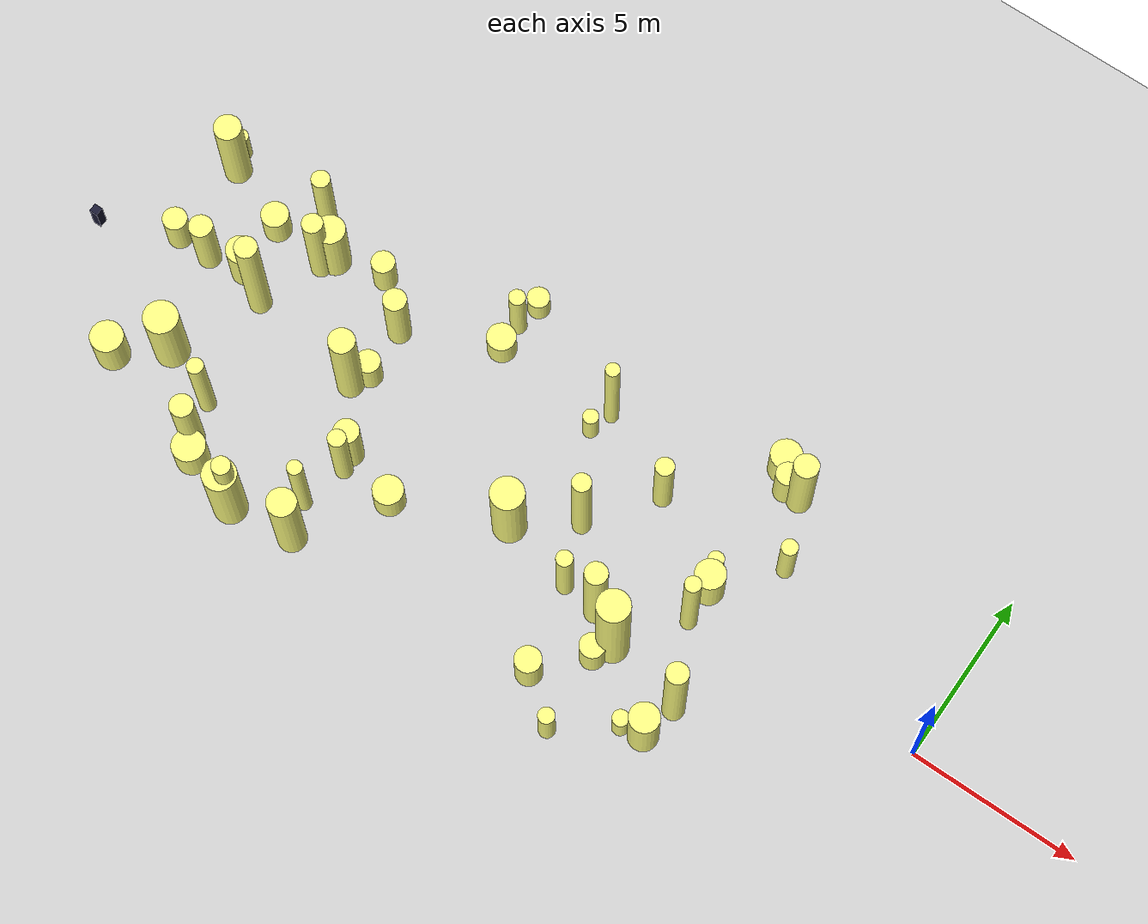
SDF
<sdf version="1.4">
 <world name="default">
  <include><uri>model://ground_plane</uri></include>
  <include><uri>model://sun</uri></include>
  <model name="forest">
   <static>true</static>
   <link name="cylinder0">
    <pose>-23.785170255682715 0.858615654751226 1.0680569842711363 0 0 0</pose>
    <visual name="visual">
     <geometry>
      <cylinder><radius>0.3402988717110522</radius><length>2.1361139685422725</length></cylinder>
     </geometry>
     <material>
      <ambient>0.6 0.6 0.6 1</ambient>
      <diffuse>1 1 0.5 1</diffuse>
      <specular>0 0 0</specular>
      <emissive>0 0 0 1</emissive>
     </material>
    </visual>
    <collision name="collision">
     <geometry>
      <cylinder><radius>0.3402988717110522</radius><length>2.1361139685422725</length></cylinder>
     </geometry>
     <max_contacts>0</max_contacts>
    </collision>
   </link>
   <link name="cylinder2">
    <pose>-16.982513130498866 -4.464230554886309 1.5181779043415704 0 0 0</pose>
    <visual name="visual">
     <geometry>
      <cylinder><radius>0.41453890767657153</radius><length>3.036355808683141</length></cylinder>
     </geometry>
     <material>
      <ambient>0.6 0.6 0.6 1</ambient>
      <diffuse>1 1 0.5 1</diffuse>
      <specular>0 0 0</specular>
      <emissive>0 0 0 1</emissive>
     </material>
    </visual>
    <collision name="collision">
     <geometry>
      <cylinder><radius>0.41453890767657153</radius><length>3.036355808683141</length></cylinder>
     </geometry>
     <max_contacts>0</max_contacts>
    </collision>
   </link>
   <link name="cylinder4">
    <pose>-17.305909216532676 -3.473697885444673 1.4575486880233148 0 0 0</pose>
    <visual name="visual">
     <geometry>
      <cylinder><radius>0.21732607669334028</radius><length>2.9150973760466297</length></cylinder>
     </geometry>
     <material>
      <ambient>0.6 0.6 0.6 1</ambient>
      <diffuse>1 1 0.5 1</diffuse>
      <specular>0 0 0</specular>
      <emissive>0 0 0 1</emissive>
     </material>
    </visual>
    <collision name="collision">
     <geometry>
      <cylinder><radius>0.21732607669334028</radius><length>2.9150973760466297</length></cylinder>
     </geometry>
     <max_contacts>0</max_contacts>
    </collision>
   </link>
   <link name="cylinder7">
    <pose>-21.497163602215124 3.442455883583156 1.6812864613903267 0 0 0</pose>
    <visual name="visual">
     <geometry>
      <cylinder><radius>0.2655494989353468</radius><length>3.3625729227806533</length></cylinder>
     </geometry>
     <material>
      <ambient>0.6 0.6 0.6 1</ambient>
      <diffuse>1 1 0.5 1</diffuse>
      <specular>0 0 0</specular>
      <emissive>0 0 0 1</emissive>
     </material>
    </visual>
    <collision name="collision">
     <geometry>
      <cylinder><radius>0.2655494989353468</radius><length>3.3625729227806533</length></cylinder>
     </geometry>
     <max_contacts>0</max_contacts>
    </collision>
   </link>
   <link name="cylinder14">
    <pose>-15.424550456200043 -2.119455929859245 0.4834123405492821 0 0 0</pose>
    <visual name="visual">
     <geometry>
      <cylinder><radius>0.43687664144653027</radius><length>0.9668246810985642</length></cylinder>
     </geometry>
     <material>
      <ambient>0.6 0.6 0.6 1</ambient>
      <diffuse>1 1 0.5 1</diffuse>
      <specular>0 0 0</specular>
      <emissive>0 0 0 1</emissive>
     </material>
    </visual>
    <collision name="collision">
     <geometry>
      <cylinder><radius>0.43687664144653027</radius><length>0.9668246810985642</length></cylinder>
     </geometry>
     <max_contacts>0</max_contacts>
    </collision>
   </link>
   <link name="cylinder15">
    <pose>-24.830451484869965 0.8806531129328423 0.6390781866645068 0 0 0</pose>
    <visual name="visual">
     <geometry>
      <cylinder><radius>0.35179560158539624</radius><length>1.2781563733290136</length></cylinder>
     </geometry>
     <material>
      <ambient>0.6 0.6 0.6 1</ambient>
      <diffuse>1 1 0.5 1</diffuse>
      <specular>0 0 0</specular>
      <emissive>0 0 0 1</emissive>
     </material>
    </visual>
    <collision name="collision">
     <geometry>
      <cylinder><radius>0.35179560158539624</radius><length>1.2781563733290136</length></cylinder>
     </geometry>
     <max_contacts>0</max_contacts>
    </collision>
   </link>
   <link name="cylinder16">
    <pose>-17.09226629540975 -1.618599905884798 0.9177513465718122 0 0 0</pose>
    <visual name="visual">
     <geometry>
      <cylinder><radius>0.36407450608267056</radius><length>1.8355026931436245</length></cylinder>
     </geometry>
     <material>
      <ambient>0.6 0.6 0.6 1</ambient>
      <diffuse>1 1 0.5 1</diffuse>
      <specular>0 0 0</specular>
      <emissive>0 0 0 1</emissive>
     </material>
    </visual>
    <collision name="collision">
     <geometry>
      <cylinder><radius>0.36407450608267056</radius><length>1.8355026931436245</length></cylinder>
     </geometry>
     <max_contacts>0</max_contacts>
    </collision>
   </link>
   <link name="cylinder20">
    <pose>-7.146554907595238 1.3591154046007201 0.32350330603252303 0 0 0</pose>
    <visual name="visual">
     <geometry>
      <cylinder><radius>0.2321273657846676</radius><length>0.6470066120650461</length></cylinder>
     </geometry>
     <material>
      <ambient>0.6 0.6 0.6 1</ambient>
      <diffuse>1 1 0.5 1</diffuse>
      <specular>0 0 0</specular>
      <emissive>0 0 0 1</emissive>
     </material>
    </visual>
    <collision name="collision">
     <geometry>
      <cylinder><radius>0.2321273657846676</radius><length>0.6470066120650461</length></cylinder>
     </geometry>
     <max_contacts>0</max_contacts>
    </collision>
   </link>
   <link name="cylinder22">
    <pose>-6.776622383678561 4.212827206988498 0.7084860347944146 0 0 0</pose>
    <visual name="visual">
     <geometry>
      <cylinder><radius>0.3408848058256867</radius><length>1.4169720695888293</length></cylinder>
     </geometry>
     <material>
      <ambient>0.6 0.6 0.6 1</ambient>
      <diffuse>1 1 0.5 1</diffuse>
      <specular>0 0 0</specular>
      <emissive>0 0 0 1</emissive>
     </material>
    </visual>
    <collision name="collision">
     <geometry>
      <cylinder><radius>0.3408848058256867</radius><length>1.4169720695888293</length></cylinder>
     </geometry>
     <max_contacts>0</max_contacts>
    </collision>
   </link>
   <link name="cylinder25">
    <pose>-12.109198337162896 2.655638317493475 0.5547450570341494 0 0 0</pose>
    <visual name="visual">
     <geometry>
      <cylinder><radius>0.2238756173687885</radius><length>1.109490114068299</length></cylinder>
     </geometry>
     <material>
      <ambient>0.6 0.6 0.6 1</ambient>
      <diffuse>1 1 0.5 1</diffuse>
      <specular>0 0 0</specular>
      <emissive>0 0 0 1</emissive>
     </material>
    </visual>
    <collision name="collision">
     <geometry>
      <cylinder><radius>0.2238756173687885</radius><length>1.109490114068299</length></cylinder>
     </geometry>
     <max_contacts>0</max_contacts>
    </collision>
   </link>
   <link name="cylinder27">
    <pose>-15.336848639112066 4.816204754179994 0.39421610292568143 0 0 0</pose>
    <visual name="visual">
     <geometry>
      <cylinder><radius>0.3200530086702805</radius><length>0.7884322058513629</length></cylinder>
     </geometry>
     <material>
      <ambient>0.6 0.6 0.6 1</ambient>
      <diffuse>1 1 0.5 1</diffuse>
      <specular>0 0 0</specular>
      <emissive>0 0 0 1</emissive>
     </material>
    </visual>
    <collision name="collision">
     <geometry>
      <cylinder><radius>0.3200530086702805</radius><length>0.7884322058513629</length></cylinder>
     </geometry>
     <max_contacts>0</max_contacts>
    </collision>
   </link>
   <link name="cylinder29">
    <pose>-24.719279816919176 3.440128337403527 1.3865433847531825 0 0 0</pose>
    <visual name="visual">
     <geometry>
      <cylinder><radius>0.3936484266282352</radius><length>2.773086769506365</length></cylinder>
     </geometry>
     <material>
      <ambient>0.6 0.6 0.6 1</ambient>
      <diffuse>1 1 0.5 1</diffuse>
      <specular>0 0 0</specular>
      <emissive>0 0 0 1</emissive>
     </material>
    </visual>
    <collision name="collision">
     <geometry>
      <cylinder><radius>0.3936484266282352</radius><length>2.773086769506365</length></cylinder>
     </geometry>
     <max_contacts>0</max_contacts>
    </collision>
   </link>
   <link name="cylinder32">
    <pose>-12.344993057159408 -0.8581550215634417 1.3897939412623308 0 0 0</pose>
    <visual name="visual">
     <geometry>
      <cylinder><radius>0.47974164405565967</radius><length>2.7795878825246616</length></cylinder>
     </geometry>
     <material>
      <ambient>0.6 0.6 0.6 1</ambient>
      <diffuse>1 1 0.5 1</diffuse>
      <specular>0 0 0</specular>
      <emissive>0 0 0 1</emissive>
     </material>
    </visual>
    <collision name="collision">
     <geometry>
      <cylinder><radius>0.47974164405565967</radius><length>2.7795878825246616</length></cylinder>
     </geometry>
     <max_contacts>0</max_contacts>
    </collision>
   </link>
   <link name="cylinder38">
    <pose>-10.767923466901912 0.28126110510569546 1.75378816546496 0 0 0</pose>
    <visual name="visual">
     <geometry>
      <cylinder><radius>0.26946038249747256</radius><length>3.50757633092992</length></cylinder>
     </geometry>
     <material>
      <ambient>0.6 0.6 0.6 1</ambient>
      <diffuse>1 1 0.5 1</diffuse>
      <specular>0 0 0</specular>
      <emissive>0 0 0 1</emissive>
     </material>
    </visual>
    <collision name="collision">
     <geometry>
      <cylinder><radius>0.26946038249747256</radius><length>3.50757633092992</length></cylinder>
     </geometry>
     <max_contacts>0</max_contacts>
    </collision>
   </link>
   <link name="cylinder39">
    <pose>-5.542187458005763 2.330024956682271 1.0112195197869174 0 0 0</pose>
    <visual name="visual">
     <geometry>
      <cylinder><radius>0.2346234141529287</radius><length>2.0224390395738348</length></cylinder>
     </geometry>
     <material>
      <ambient>0.6 0.6 0.6 1</ambient>
      <diffuse>1 1 0.5 1</diffuse>
      <specular>0 0 0</specular>
      <emissive>0 0 0 1</emissive>
     </material>
    </visual>
    <collision name="collision">
     <geometry>
      <cylinder><radius>0.2346234141529287</radius><length>2.0224390395738348</length></cylinder>
     </geometry>
     <max_contacts>0</max_contacts>
    </collision>
   </link>
   <link name="cylinder40">
    <pose>-21.79514124067716 0.5589695124922365 1.9137921319072406 0 0 0</pose>
    <visual name="visual">
     <geometry>
      <cylinder><radius>0.325509300702765</radius><length>3.8275842638144812</length></cylinder>
     </geometry>
     <material>
      <ambient>0.6 0.6 0.6 1</ambient>
      <diffuse>1 1 0.5 1</diffuse>
      <specular>0 0 0</specular>
      <emissive>0 0 0 1</emissive>
     </material>
    </visual>
    <collision name="collision">
     <geometry>
      <cylinder><radius>0.325509300702765</radius><length>3.8275842638144812</length></cylinder>
     </geometry>
     <max_contacts>0</max_contacts>
    </collision>
   </link>
   <link name="cylinder41">
    <pose>-6.868907569636146 -0.3416063995372749 1.7190181544570673 0 0 0</pose>
    <visual name="visual">
     <geometry>
      <cylinder><radius>0.23068241252803065</radius><length>3.4380363089141346</length></cylinder>
     </geometry>
     <material>
      <ambient>0.6 0.6 0.6 1</ambient>
      <diffuse>1 1 0.5 1</diffuse>
      <specular>0 0 0</specular>
      <emissive>0 0 0 1</emissive>
     </material>
    </visual>
    <collision name="collision">
     <geometry>
      <cylinder><radius>0.23068241252803065</radius><length>3.4380363089141346</length></cylinder>
     </geometry>
     <max_contacts>0</max_contacts>
    </collision>
   </link>
   <link name="cylinder42">
    <pose>-22.688539557558652 1.092514639524965 0.7696702428925606 0 0 0</pose>
    <visual name="visual">
     <geometry>
      <cylinder><radius>0.4211997071474807</radius><length>1.5393404857851212</length></cylinder>
     </geometry>
     <material>
      <ambient>0.6 0.6 0.6 1</ambient>
      <diffuse>1 1 0.5 1</diffuse>
      <specular>0 0 0</specular>
      <emissive>0 0 0 1</emissive>
     </material>
    </visual>
    <collision name="collision">
     <geometry>
      <cylinder><radius>0.4211997071474807</radius><length>1.5393404857851212</length></cylinder>
     </geometry>
     <max_contacts>0</max_contacts>
    </collision>
   </link>
   <link name="cylinder44">
    <pose>-6.732094830644947 -3.7667867439288116 0.4926059050593634 0 0 0</pose>
    <visual name="visual">
     <geometry>
      <cylinder><radius>0.23911900259635044</radius><length>0.9852118101187268</length></cylinder>
     </geometry>
     <material>
      <ambient>0.6 0.6 0.6 1</ambient>
      <diffuse>1 1 0.5 1</diffuse>
      <specular>0 0 0</specular>
      <emissive>0 0 0 1</emissive>
     </material>
    </visual>
    <collision name="collision">
     <geometry>
      <cylinder><radius>0.23911900259635044</radius><length>0.9852118101187268</length></cylinder>
     </geometry>
     <max_contacts>0</max_contacts>
    </collision>
   </link>
   <link name="cylinder45">
    <pose>-18.29430755576153 0.005436097848785515 1.6315916997252689 0 0 0</pose>
    <visual name="visual">
     <geometry>
      <cylinder><radius>0.37604112075896046</radius><length>3.2631833994505377</length></cylinder>
     </geometry>
     <material>
      <ambient>0.6 0.6 0.6 1</ambient>
      <diffuse>1 1 0.5 1</diffuse>
      <specular>0 0 0</specular>
      <emissive>0 0 0 1</emissive>
     </material>
    </visual>
    <collision name="collision">
     <geometry>
      <cylinder><radius>0.37604112075896046</radius><length>3.2631833994505377</length></cylinder>
     </geometry>
     <max_contacts>0</max_contacts>
    </collision>
   </link>
   <link name="cylinder47">
    <pose>-22.724056565020206 2.6316526298070873 0.5052599635196058 0 0 0</pose>
    <visual name="visual">
     <geometry>
      <cylinder><radius>0.3982028571683419</radius><length>1.0105199270392116</length></cylinder>
     </geometry>
     <material>
      <ambient>0.6 0.6 0.6 1</ambient>
      <diffuse>1 1 0.5 1</diffuse>
      <specular>0 0 0</specular>
      <emissive>0 0 0 1</emissive>
     </material>
    </visual>
    <collision name="collision">
     <geometry>
      <cylinder><radius>0.3982028571683419</radius><length>1.0105199270392116</length></cylinder>
     </geometry>
     <max_contacts>0</max_contacts>
    </collision>
   </link>
   <link name="cylinder52">
    <pose>-21.193401463640356 -2.6621613360079985 1.427286006217452 0 0 0</pose>
    <visual name="visual">
     <geometry>
      <cylinder><radius>0.23805275025386985</radius><length>2.854572012434904</length></cylinder>
     </geometry>
     <material>
      <ambient>0.6 0.6 0.6 1</ambient>
      <diffuse>1 1 0.5 1</diffuse>
      <specular>0 0 0</specular>
      <emissive>0 0 0 1</emissive>
     </material>
    </visual>
    <collision name="collision">
     <geometry>
      <cylinder><radius>0.23805275025386985</radius><length>2.854572012434904</length></cylinder>
     </geometry>
     <max_contacts>0</max_contacts>
    </collision>
   </link>
   <link name="cylinder62">
    <pose>-24.206459652244096 -2.980930419648762 0.6776186498868113 0 0 0</pose>
    <visual name="visual">
     <geometry>
      <cylinder><radius>0.47298898345222123</radius><length>1.3552372997736226</length></cylinder>
     </geometry>
     <material>
      <ambient>0.6 0.6 0.6 1</ambient>
      <diffuse>1 1 0.5 1</diffuse>
      <specular>0 0 0</specular>
      <emissive>0 0 0 1</emissive>
     </material>
    </visual>
    <collision name="collision">
     <geometry>
      <cylinder><radius>0.47298898345222123</radius><length>1.3552372997736226</length></cylinder>
     </geometry>
     <max_contacts>0</max_contacts>
    </collision>
   </link>
   <link name="cylinder63">
    <pose>-22.931414568197084 -1.976654648532099 1.2367834670499915 0 0 0</pose>
    <visual name="visual">
     <geometry>
      <cylinder><radius>0.4950678559038876</radius><length>2.473566934099983</length></cylinder>
     </geometry>
     <material>
      <ambient>0.6 0.6 0.6 1</ambient>
      <diffuse>1 1 0.5 1</diffuse>
      <specular>0 0 0</specular>
      <emissive>0 0 0 1</emissive>
     </material>
    </visual>
    <collision name="collision">
     <geometry>
      <cylinder><radius>0.4950678559038876</radius><length>2.473566934099983</length></cylinder>
     </geometry>
     <max_contacts>0</max_contacts>
    </collision>
   </link>
   <link name="cylinder64">
    <pose>-8.284358423220816 -4.931271896442986 0.7731584431832025 0 0 0</pose>
    <visual name="visual">
     <geometry>
      <cylinder><radius>0.23332429806397634</radius><length>1.546316886366405</length></cylinder>
     </geometry>
     <material>
      <ambient>0.6 0.6 0.6 1</ambient>
      <diffuse>1 1 0.5 1</diffuse>
      <specular>0 0 0</specular>
      <emissive>0 0 0 1</emissive>
     </material>
    </visual>
    <collision name="collision">
     <geometry>
      <cylinder><radius>0.23332429806397634</radius><length>1.546316886366405</length></cylinder>
     </geometry>
     <max_contacts>0</max_contacts>
    </collision>
   </link>
   <link name="cylinder65">
    <pose>-20.562822969011627 -4.168381505044301 0.5374993651794383 0 0 0</pose>
    <visual name="visual">
     <geometry>
      <cylinder><radius>0.47934469294607623</radius><length>1.0749987303588766</length></cylinder>
     </geometry>
     <material>
      <ambient>0.6 0.6 0.6 1</ambient>
      <diffuse>1 1 0.5 1</diffuse>
      <specular>0 0 0</specular>
      <emissive>0 0 0 1</emissive>
     </material>
    </visual>
    <collision name="collision">
     <geometry>
      <cylinder><radius>0.47934469294607623</radius><length>1.0749987303588766</length></cylinder>
     </geometry>
     <max_contacts>0</max_contacts>
    </collision>
   </link>
   <link name="cylinder71">
    <pose>-8.158272569079877 -2.0697964768074306 1.9175500377683157 0 0 0</pose>
    <visual name="visual">
     <geometry>
      <cylinder><radius>0.46409918106484827</radius><length>3.8351000755366313</length></cylinder>
     </geometry>
     <material>
      <ambient>0.6 0.6 0.6 1</ambient>
      <diffuse>1 1 0.5 1</diffuse>
      <specular>0 0 0</specular>
      <emissive>0 0 0 1</emissive>
     </material>
    </visual>
    <collision name="collision">
     <geometry>
      <cylinder><radius>0.46409918106484827</radius><length>3.8351000755366313</length></cylinder>
     </geometry>
     <max_contacts>0</max_contacts>
    </collision>
   </link>
   <link name="cylinder77">
    <pose>-7.15076720845428 4.7273808640614075 0.5916066938827458 0 0 0</pose>
    <visual name="visual">
     <geometry>
      <cylinder><radius>0.44799100745224923</radius><length>1.1832133877654916</length></cylinder>
     </geometry>
     <material>
      <ambient>0.6 0.6 0.6 1</ambient>
      <diffuse>1 1 0.5 1</diffuse>
      <specular>0 0 0</specular>
      <emissive>0 0 0 1</emissive>
     </material>
    </visual>
    <collision name="collision">
     <geometry>
      <cylinder><radius>0.44799100745224923</radius><length>1.1832133877654916</length></cylinder>
     </geometry>
     <max_contacts>0</max_contacts>
    </collision>
   </link>
   <link name="cylinder78">
    <pose>-10.14992046123564 -1.4034327026978644 1.246531618778234 0 0 0</pose>
    <visual name="visual">
     <geometry>
      <cylinder><radius>0.23743050602610913</radius><length>2.493063237556468</length></cylinder>
     </geometry>
     <material>
      <ambient>0.6 0.6 0.6 1</ambient>
      <diffuse>1 1 0.5 1</diffuse>
      <specular>0 0 0</specular>
      <emissive>0 0 0 1</emissive>
     </material>
    </visual>
    <collision name="collision">
     <geometry>
      <cylinder><radius>0.23743050602610913</radius><length>2.493063237556468</length></cylinder>
     </geometry>
     <max_contacts>0</max_contacts>
    </collision>
   </link>
   <link name="cylinder82">
    <pose>-16.98055823775494 -2.09969482662949 1.2812569936660667 0 0 0</pose>
    <visual name="visual">
     <geometry>
      <cylinder><radius>0.2574221369638737</radius><length>2.5625139873321334</length></cylinder>
     </geometry>
     <material>
      <ambient>0.6 0.6 0.6 1</ambient>
      <diffuse>1 1 0.5 1</diffuse>
      <specular>0 0 0</specular>
      <emissive>0 0 0 1</emissive>
     </material>
    </visual>
    <collision name="collision">
     <geometry>
      <cylinder><radius>0.2574221369638737</radius><length>2.5625139873321334</length></cylinder>
     </geometry>
     <max_contacts>0</max_contacts>
    </collision>
   </link>
   <link name="cylinder83">
    <pose>-9.065172181492255 -1.5302928201967192 1.7557352017220944 0 0 0</pose>
    <visual name="visual">
     <geometry>
      <cylinder><radius>0.32204624129817483</radius><length>3.511470403444189</length></cylinder>
     </geometry>
     <material>
      <ambient>0.6 0.6 0.6 1</ambient>
      <diffuse>1 1 0.5 1</diffuse>
      <specular>0 0 0</specular>
      <emissive>0 0 0 1</emissive>
     </material>
    </visual>
    <collision name="collision">
     <geometry>
      <cylinder><radius>0.32204624129817483</radius><length>3.511470403444189</length></cylinder>
     </geometry>
     <max_contacts>0</max_contacts>
    </collision>
   </link>
   <link name="cylinder84">
    <pose>-18.86513918127814 -4.714993799054539 1.3828216828881277 0 0 0</pose>
    <visual name="visual">
     <geometry>
      <cylinder><radius>0.47918874101934705</radius><length>2.7656433657762554</length></cylinder>
     </geometry>
     <material>
      <ambient>0.6 0.6 0.6 1</ambient>
      <diffuse>1 1 0.5 1</diffuse>
      <specular>0 0 0</specular>
      <emissive>0 0 0 1</emissive>
     </material>
    </visual>
    <collision name="collision">
     <geometry>
      <cylinder><radius>0.47918874101934705</radius><length>2.7656433657762554</length></cylinder>
     </geometry>
     <max_contacts>0</max_contacts>
    </collision>
   </link>
   <link name="cylinder94">
    <pose>-20.80855881596559 2.764586865137865 1.0891084165848155 0 0 0</pose>
    <visual name="visual">
     <geometry>
      <cylinder><radius>0.43507740382450577</radius><length>2.178216833169631</length></cylinder>
     </geometry>
     <material>
      <ambient>0.6 0.6 0.6 1</ambient>
      <diffuse>1 1 0.5 1</diffuse>
      <specular>0 0 0</specular>
      <emissive>0 0 0 1</emissive>
     </material>
    </visual>
    <collision name="collision">
     <geometry>
      <cylinder><radius>0.43507740382450577</radius><length>2.178216833169631</length></cylinder>
     </geometry>
     <max_contacts>0</max_contacts>
    </collision>
   </link>
   <link name="cylinder96">
    <pose>-6.304766478787183 4.188178173535702 1.4339529945060914 0 0 0</pose>
    <visual name="visual">
     <geometry>
      <cylinder><radius>0.35141382204510396</radius><length>2.8679059890121827</length></cylinder>
     </geometry>
     <material>
      <ambient>0.6 0.6 0.6 1</ambient>
      <diffuse>1 1 0.5 1</diffuse>
      <specular>0 0 0</specular>
      <emissive>0 0 0 1</emissive>
     </material>
    </visual>
    <collision name="collision">
     <geometry>
      <cylinder><radius>0.35141382204510396</radius><length>2.8679059890121827</length></cylinder>
     </geometry>
     <max_contacts>0</max_contacts>
    </collision>
   </link>
   <link name="cylinder98">
    <pose>-18.093177985184578 2.0307707387210776 1.182268996508229 0 0 0</pose>
    <visual name="visual">
     <geometry>
      <cylinder><radius>0.3357265203724499</radius><length>2.364537993016458</length></cylinder>
     </geometry>
     <material>
      <ambient>0.6 0.6 0.6 1</ambient>
      <diffuse>1 1 0.5 1</diffuse>
      <specular>0 0 0</specular>
      <emissive>0 0 0 1</emissive>
     </material>
    </visual>
    <collision name="collision">
     <geometry>
      <cylinder><radius>0.3357265203724499</radius><length>2.364537993016458</length></cylinder>
     </geometry>
     <max_contacts>0</max_contacts>
    </collision>
   </link>
   <link name="cylinder103">
    <pose>-21.038410641438414 2.382298785187638 1.4914167690914857 0 0 0</pose>
    <visual name="visual">
     <geometry>
      <cylinder><radius>0.29955836018012694</radius><length>2.9828335381829714</length></cylinder>
     </geometry>
     <material>
      <ambient>0.6 0.6 0.6 1</ambient>
      <diffuse>1 1 0.5 1</diffuse>
      <specular>0 0 0</specular>
      <emissive>0 0 0 1</emissive>
     </material>
    </visual>
    <collision name="collision">
     <geometry>
      <cylinder><radius>0.29955836018012694</radius><length>2.9828335381829714</length></cylinder>
     </geometry>
     <max_contacts>0</max_contacts>
    </collision>
   </link>
   <link name="cylinder106">
    <pose>-6.923113797058278 0.6934813816191792 0.7262200805960102 0 0 0</pose>
    <visual name="visual">
     <geometry>
      <cylinder><radius>0.4357212533883691</radius><length>1.4524401611920204</length></cylinder>
     </geometry>
     <material>
      <ambient>0.6 0.6 0.6 1</ambient>
      <diffuse>1 1 0.5 1</diffuse>
      <specular>0 0 0</specular>
      <emissive>0 0 0 1</emissive>
     </material>
    </visual>
    <collision name="collision">
     <geometry>
      <cylinder><radius>0.4357212533883691</radius><length>1.4524401611920204</length></cylinder>
     </geometry>
     <max_contacts>0</max_contacts>
    </collision>
   </link>
   <link name="cylinder108">
    <pose>-8.42713503386248 -2.6119499864229168 0.578797137190412 0 0 0</pose>
    <visual name="visual">
     <geometry>
      <cylinder><radius>0.3601455055810835</radius><length>1.157594274380824</length></cylinder>
     </geometry>
     <material>
      <ambient>0.6 0.6 0.6 1</ambient>
      <diffuse>1 1 0.5 1</diffuse>
      <specular>0 0 0</specular>
      <emissive>0 0 0 1</emissive>
     </material>
    </visual>
    <collision name="collision">
     <geometry>
      <cylinder><radius>0.3601455055810835</radius><length>1.157594274380824</length></cylinder>
     </geometry>
     <max_contacts>0</max_contacts>
    </collision>
   </link>
   <link name="cylinder114">
    <pose>-6.104572435122503 -3.629820893404215 0.995391046566089 0 0 0</pose>
    <visual name="visual">
     <geometry>
      <cylinder><radius>0.42623093090610986</radius><length>1.990782093132178</length></cylinder>
     </geometry>
     <material>
      <ambient>0.6 0.6 0.6 1</ambient>
      <diffuse>1 1 0.5 1</diffuse>
      <specular>0 0 0</specular>
      <emissive>0 0 0 1</emissive>
     </material>
    </visual>
    <collision name="collision">
     <geometry>
      <cylinder><radius>0.42623093090610986</radius><length>1.990782093132178</length></cylinder>
     </geometry>
     <max_contacts>0</max_contacts>
    </collision>
   </link>
   <link name="cylinder115">
    <pose>-18.73671661180178 -4.65587632519127 1.76269152177897 0 0 0</pose>
    <visual name="visual">
     <geometry><cylinder><radius>0.2667996564214119</radius><length>3.52538304355794</length></cylinder></geometry>
     <material>
      <ambient>0.6 0.6 0.6 1</ambient>
      <diffuse>1 1 0.5 1</diffuse>
      <specular>0 0 0</specular>
      <emissive>0 0 0 1</emissive>
     </material>
    </visual>
    <collision name="collision">
     <geometry><cylinder><radius>0.2667996564214119</radius><length>3.52538304355794</length></cylinder></geometry>
     <max_contacts>0</max_contacts>
    </collision>
   </link>
   <link name="cylinder118">
    <pose>-24.9363592673496 3.9656701527625824 0.5356100797420411 0 0 0</pose>
    <visual name="visual">
     <geometry>
      <cylinder><radius>0.24948164116199908</radius><length>1.0712201594840822</length></cylinder>
     </geometry>
     <material>
      <ambient>0.6 0.6 0.6 1</ambient>
      <diffuse>1 1 0.5 1</diffuse>
      <specular>0 0 0</specular>
      <emissive>0 0 0 1</emissive>
     </material>
    </visual>
    <collision name="collision">
     <geometry>
      <cylinder><radius>0.24948164116199908</radius><length>1.0712201594840822</length></cylinder>
     </geometry>
     <max_contacts>0</max_contacts>
    </collision>
   </link>
   <link name="cylinder119">
    <pose>-15.480827427339783 3.2469771284258258 0.4492841360074088 0 0 0</pose>
    <visual name="visual">
     <geometry>
      <cylinder><radius>0.4149046948188782</radius><length>0.8985682720148176</length></cylinder>
     </geometry>
     <material>
      <ambient>0.6 0.6 0.6 1</ambient>
      <diffuse>1 1 0.5 1</diffuse>
      <specular>0 0 0</specular>
      <emissive>0 0 0 1</emissive>
     </material>
    </visual>
    <collision name="collision">
     <geometry>
      <cylinder><radius>0.4149046948188782</radius><length>0.8985682720148176</length></cylinder>
     </geometry>
     <max_contacts>0</max_contacts>
    </collision>
   </link>
   <link name="cylinder121">
    <pose>-9.399957456978674 2.1553860440563932 1.2877531987454374 0 0 0</pose>
    <visual name="visual">
     <geometry>
      <cylinder><radius>0.2660314661006088</radius><length>2.5755063974908747</length></cylinder>
     </geometry>
     <material>
      <ambient>0.6 0.6 0.6 1</ambient>
      <diffuse>1 1 0.5 1</diffuse>
      <specular>0 0 0</specular>
      <emissive>0 0 0 1</emissive>
     </material>
    </visual>
    <collision name="collision">
     <geometry>
      <cylinder><radius>0.2660314661006088</radius><length>2.5755063974908747</length></cylinder>
     </geometry>
     <max_contacts>0</max_contacts>
    </collision>
   </link>
   <link name="cylinder128">
    <pose>-5.851209892447578 -2.5756764663858753 1.8318258111531802 0 0 0</pose>
    <visual name="visual">
     <geometry>
      <cylinder><radius>0.3097226218943523</radius><length>3.6636516223063604</length></cylinder>
     </geometry>
     <material>
      <ambient>0.6 0.6 0.6 1</ambient>
      <diffuse>1 1 0.5 1</diffuse>
      <specular>0 0 0</specular>
      <emissive>0 0 0 1</emissive>
     </material>
    </visual>
    <collision name="collision">
     <geometry>
      <cylinder><radius>0.3097226218943523</radius><length>3.6636516223063604</length></cylinder>
     </geometry>
     <max_contacts>0</max_contacts>
    </collision>
   </link>
   <link name="cylinder129">
    <pose>-20.949734936452092 -3.6717989990406696 1.2216657713451065 0 0 0</pose>
    <visual name="visual">
     <geometry>
      <cylinder><radius>0.33969664638705444</radius><length>2.443331542690213</length></cylinder>
     </geometry>
     <material>
      <ambient>0.6 0.6 0.6 1</ambient>
      <diffuse>1 1 0.5 1</diffuse>
      <specular>0 0 0</specular>
      <emissive>0 0 0 1</emissive>
     </material>
    </visual>
    <collision name="collision">
     <geometry>
      <cylinder><radius>0.33969664638705444</radius><length>2.443331542690213</length></cylinder>
     </geometry>
     <max_contacts>0</max_contacts>
    </collision>
   </link>
   <link name="cylinder133">
    <pose>-19.340308420361108 3.0971493447716014 0.6281703781516323 0 0 0</pose>
    <visual name="visual">
     <geometry>
      <cylinder><radius>0.3384727585567897</radius><length>1.2563407563032647</length></cylinder>
     </geometry>
     <material>
      <ambient>0.6 0.6 0.6 1</ambient>
      <diffuse>1 1 0.5 1</diffuse>
      <specular>0 0 0</specular>
      <emissive>0 0 0 1</emissive>
     </material>
    </visual>
    <collision name="collision">
     <geometry>
      <cylinder><radius>0.3384727585567897</radius><length>1.2563407563032647</length></cylinder>
     </geometry>
     <max_contacts>0</max_contacts>
    </collision>
   </link>
   <link name="cylinder137">
    <pose>-15.49263785737945 4.057290330144417 1.0364029002145858 0 0 0</pose>
    <visual name="visual">
     <geometry>
      <cylinder><radius>0.23785009422729428</radius><length>2.0728058004291716</length></cylinder>
     </geometry>
     <material>
      <ambient>0.6 0.6 0.6 1</ambient>
      <diffuse>1 1 0.5 1</diffuse>
      <specular>0 0 0</specular>
      <emissive>0 0 0 1</emissive>
     </material>
    </visual>
    <collision name="collision">
     <geometry>
      <cylinder><radius>0.23785009422729428</radius><length>2.0728058004291716</length></cylinder>
     </geometry>
     <max_contacts>0</max_contacts>
    </collision>
   </link>
   <link name="cylinder138">
    <pose>-9.571585952526885 -3.922522793120109 0.6730624222889368 0 0 0</pose>
    <visual name="visual">
     <geometry>
      <cylinder><radius>0.37803097451099266</radius><length>1.3461248445778735</length></cylinder>
     </geometry>
     <material>
      <ambient>0.6 0.6 0.6 1</ambient>
      <diffuse>1 1 0.5 1</diffuse>
      <specular>0 0 0</specular>
      <emissive>0 0 0 1</emissive>
     </material>
    </visual>
    <collision name="collision">
     <geometry>
      <cylinder><radius>0.37803097451099266</radius><length>1.3461248445778735</length></cylinder>
     </geometry>
     <max_contacts>0</max_contacts>
    </collision>
   </link>
   <link name="cylinder139">
    <pose>-17.996167367694973 0.5284746482196994 0.5659623056797439 0 0 0</pose>
    <visual name="visual">
     <geometry>
      <cylinder><radius>0.34910231031893496</radius><length>1.1319246113594879</length></cylinder>
     </geometry>
     <material>
      <ambient>0.6 0.6 0.6 1</ambient>
      <diffuse>1 1 0.5 1</diffuse>
      <specular>0 0 0</specular>
      <emissive>0 0 0 1</emissive>
     </material>
    </visual>
    <collision name="collision">
     <geometry>
      <cylinder><radius>0.34910231031893496</radius><length>1.1319246113594879</length></cylinder>
     </geometry>
     <max_contacts>0</max_contacts>
    </collision>
   </link>
   <link name="cylinder146">
    <pose>-11.875335650234353 3.3240520674865834 1.7504041025148067 0 0 0</pose>
    <visual name="visual">
     <geometry>
      <cylinder><radius>0.20188097245513242</radius><length>3.5008082050296134</length></cylinder>
     </geometry>
     <material>
      <ambient>0.6 0.6 0.6 1</ambient>
      <diffuse>1 1 0.5 1</diffuse>
      <specular>0 0 0</specular>
      <emissive>0 0 0 1</emissive>
     </material>
    </visual>
    <collision name="collision">
     <geometry>
      <cylinder><radius>0.20188097245513242</radius><length>3.5008082050296134</length></cylinder>
     </geometry>
     <max_contacts>0</max_contacts>
    </collision>
   </link>
   <link name="cube3">
    <pose>-27.0 0.0 0.25 0 0 0</pose>
    <visual name="visual">
     <geometry><box><size>0.25 0.25 1.0</size></box></geometry>
     <material>
      <ambient>0.1 0.1 0.1 1</ambient>
      <diffuse>0.1 0.1 0.2 1</diffuse>
      <specular>0 0 0</specular>
      <emissive>0 0 0 1</emissive>
     </material>
    </visual>
    <collision name="collision">
     <geometry><box><size>0.25 0.25 1.0</size></box></geometry>
     <max_contacts>0</max_contacts>
    </collision>
   </link>
  </model>
 </world>
</sdf>
